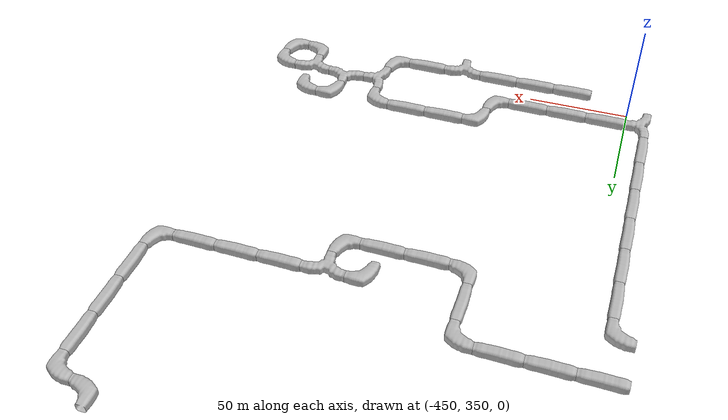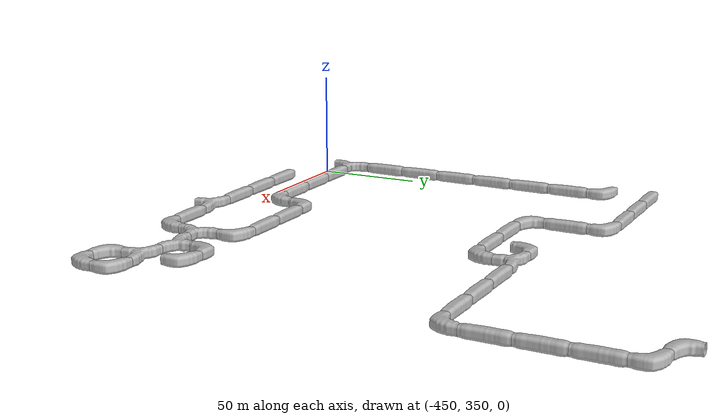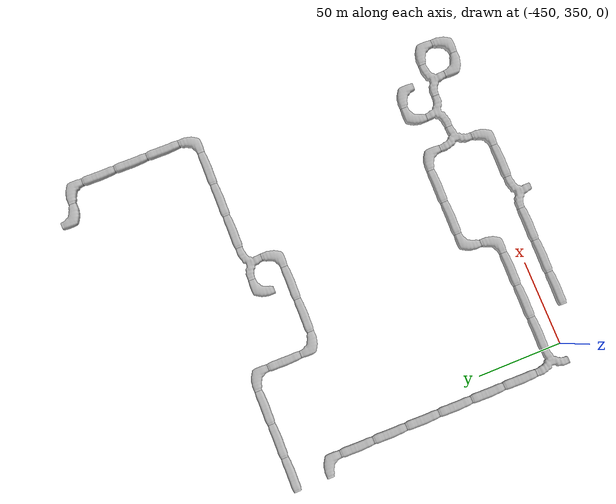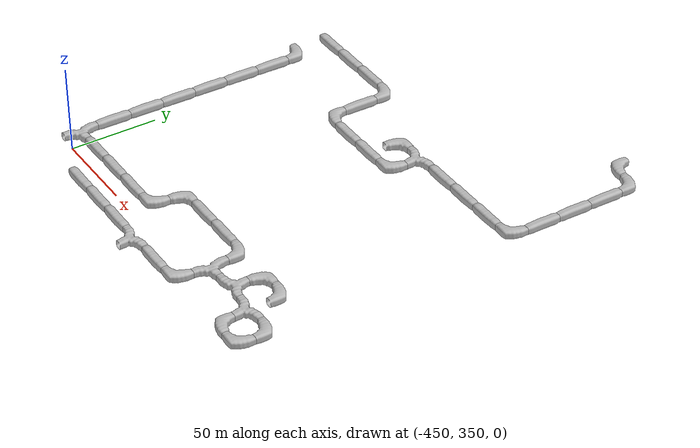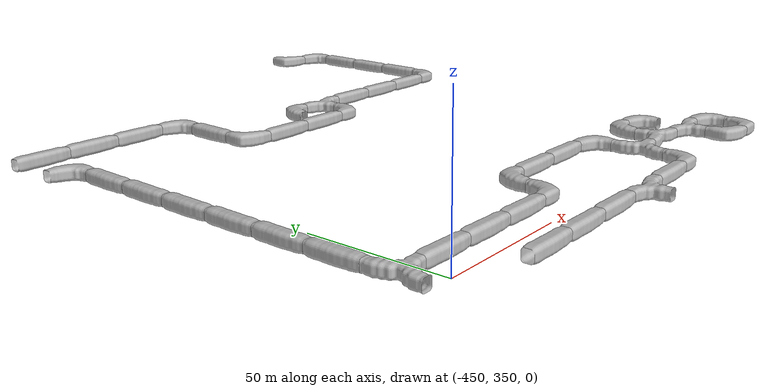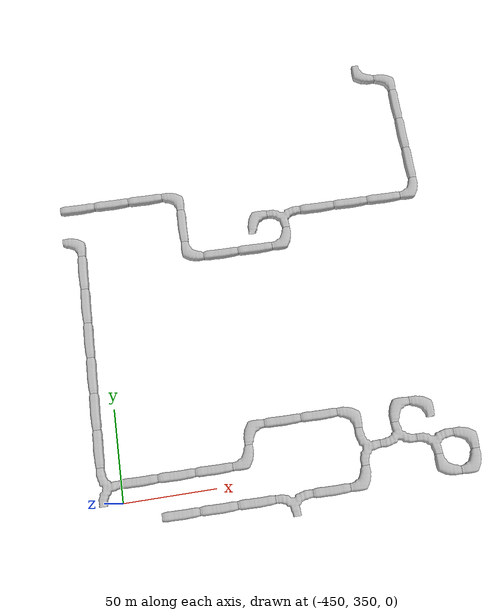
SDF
<sdf version="1.6">
 <world name="cave_16000">
  <include>
   <static>true</static>
   <name>cave_-23_18</name>
   <pose>-460 360 0 0 0 -1.5707963267948966</pose>
   <uri>model://cave_3way_20m</uri>
  </include>
  <include>
   <static>true</static>
   <name>cave_-22_18</name>
   <pose>-440 360 0 0 0 1.5707963267948966</pose>
   <uri>model://cave_straight_20m</uri>
  </include>
  <include>
   <static>true</static>
   <name>cave_-21_18</name>
   <pose>-420 360 0 0 0 1.5707963267948966</pose>
   <uri>model://cave_straight_20m</uri>
  </include>
  <include>
   <static>true</static>
   <name>cave_-20_18</name>
   <pose>-400 360 0 0 0 1.5707963267948966</pose>
   <uri>model://cave_straight_20m</uri>
  </include>
  <include>
   <static>true</static>
   <name>cave_-19_18</name>
   <pose>-380 360 0 0 0 1.5707963267948966</pose>
   <uri>model://cave_L_20m</uri>
  </include>
  <include>
   <static>true</static>
   <name>cave_-19_19</name>
   <pose>-380 380 0 0 0 -1.5707963267948966</pose>
   <uri>model://cave_L_20m</uri>
  </include>
  <include>
   <static>true</static>
   <name>cave_-18_19</name>
   <pose>-360 380 0 0 0 1.5707963267948966</pose>
   <uri>model://cave_straight_20m</uri>
  </include>
  <include>
   <static>true</static>
   <name>cave_-17_19</name>
   <pose>-340 380 0 0 0 1.5707963267948966</pose>
   <uri>model://cave_straight_20m</uri>
  </include>
  <include>
   <static>true</static>
   <name>cave_-16_19</name>
   <pose>-320 380 0 0 0 3.141592653589793</pose>
   <uri>model://cave_L_20m</uri>
  </include>
  <include>
   <static>true</static>
   <name>cave_-16_18</name>
   <pose>-320 360 0 0 0 -1.5707963267948966</pose>
   <uri>model://cave_3way_20m</uri>
  </include>
  <include>
   <static>true</static>
   <name>cave_-15_18</name>
   <pose>-300 360 0 0 0 0.0</pose>
   <uri>model://cave_3way_20m</uri>
  </include>
  <include>
   <static>true</static>
   <name>cave_-14_18</name>
   <pose>-280 360 0 0 0 3.141592653589793</pose>
   <uri>model://cave_3way_20m</uri>
  </include>
  <include>
   <static>true</static>
   <name>cave_-13_18</name>
   <pose>-260 360 0 0 0 3.141592653589793</pose>
   <uri>model://cave_L_20m</uri>
  </include>
  <include>
   <static>true</static>
   <name>cave_-13_17</name>
   <pose>-260 340 0 0 0 1.5707963267948966</pose>
   <uri>model://cave_L_20m</uri>
  </include>
  <include>
   <static>true</static>
   <name>cave_-14_17</name>
   <pose>-280 340 0 0 0 0.0</pose>
   <uri>model://cave_L_20m</uri>
  </include>
  <include>
   <static>true</static>
   <name>cave_-15_19</name>
   <pose>-300 380 0 0 0 -1.5707963267948966</pose>
   <uri>model://cave_L_20m</uri>
  </include>
  <include>
   <static>true</static>
   <name>cave_-14_19</name>
   <pose>-280 380 0 0 0 3.141592653589793</pose>
   <uri>model://cave_L_20m</uri>
  </include>
  <include>
   <static>true</static>
   <name>cave_-16_17</name>
   <pose>-320 340 0 0 0 1.5707963267948966</pose>
   <uri>model://cave_L_20m</uri>
  </include>
  <include>
   <static>true</static>
   <name>cave_-17_17</name>
   <pose>-340 340 0 0 0 1.5707963267948966</pose>
   <uri>model://cave_straight_20m</uri>
  </include>
  <include>
   <static>true</static>
   <name>cave_-18_17</name>
   <pose>-360 340 0 0 0 3.141592653589793</pose>
   <uri>model://cave_3way_20m</uri>
  </include>
  <include>
   <static>true</static>
   <name>cave_-19_17</name>
   <pose>-380 340 0 0 0 1.5707963267948966</pose>
   <uri>model://cave_straight_20m</uri>
  </include>
  <include>
   <static>true</static>
   <name>cave_-20_17</name>
   <pose>-400 340 0 0 0 1.5707963267948966</pose>
   <uri>model://cave_straight_20m</uri>
  </include>
  <include>
   <static>true</static>
   <name>cave_-21_17</name>
   <pose>-420 340 0 0 0 1.5707963267948966</pose>
   <uri>model://cave_straight_20m</uri>
  </include>
  <include>
   <static>true</static>
   <name>cave_-23_19</name>
   <pose>-460 380 0 0 0 0.0</pose>
   <uri>model://cave_straight_20m</uri>
  </include>
  <include>
   <static>true</static>
   <name>cave_-23_20</name>
   <pose>-460 400 0 0 0 0.0</pose>
   <uri>model://cave_straight_20m</uri>
  </include>
  <include>
   <static>true</static>
   <name>cave_-23_21</name>
   <pose>-460 420 0 0 0 0.0</pose>
   <uri>model://cave_straight_20m</uri>
  </include>
  <include>
   <static>true</static>
   <name>cave_-23_22</name>
   <pose>-460 440 0 0 0 0.0</pose>
   <uri>model://cave_straight_20m</uri>
  </include>
  <include>
   <static>true</static>
   <name>cave_-23_23</name>
   <pose>-460 460 0 0 0 0.0</pose>
   <uri>model://cave_straight_20m</uri>
  </include>
  <include>
   <static>true</static>
   <name>cave_-23_24</name>
   <pose>-460 480 0 0 0 0.0</pose>
   <uri>model://cave_straight_20m</uri>
  </include>
  <include>
   <static>true</static>
   <name>cave_-23_25</name>
   <pose>-460 500 0 0 0 3.141592653589793</pose>
   <uri>model://cave_L_20m</uri>
  </include>
  <include>
   <static>true</static>
   <name>cave_-23_26</name>
   <pose>-460 520 0 0 0 1.5707963267948966</pose>
   <uri>model://cave_straight_20m</uri>
  </include>
  <include>
   <static>true</static>
   <name>cave_-22_26</name>
   <pose>-440 520 0 0 0 1.5707963267948966</pose>
   <uri>model://cave_straight_20m</uri>
  </include>
  <include>
   <static>true</static>
   <name>cave_-21_26</name>
   <pose>-420 520 0 0 0 1.5707963267948966</pose>
   <uri>model://cave_straight_20m</uri>
  </include>
  <include>
   <static>true</static>
   <name>cave_-20_26</name>
   <pose>-400 520 0 0 0 3.141592653589793</pose>
   <uri>model://cave_L_20m</uri>
  </include>
  <include>
   <static>true</static>
   <name>cave_-20_25</name>
   <pose>-400 500 0 0 0 0.0</pose>
   <uri>model://cave_straight_20m</uri>
  </include>
  <include>
   <static>true</static>
   <name>cave_-20_24</name>
   <pose>-400 480 0 0 0 0.0</pose>
   <uri>model://cave_L_20m</uri>
  </include>
  <include>
   <static>true</static>
   <name>cave_-19_24</name>
   <pose>-380 480 0 0 0 1.5707963267948966</pose>
   <uri>model://cave_straight_20m</uri>
  </include>
  <include>
   <static>true</static>
   <name>cave_-18_24</name>
   <pose>-360 480 0 0 0 1.5707963267948966</pose>
   <uri>model://cave_straight_20m</uri>
  </include>
  <include>
   <static>true</static>
   <name>cave_-17_24</name>
   <pose>-340 480 0 0 0 1.5707963267948966</pose>
   <uri>model://cave_L_20m</uri>
  </include>
  <include>
   <static>true</static>
   <name>cave_-17_25</name>
   <pose>-340 500 0 0 0 3.141592653589793</pose>
   <uri>model://cave_3way_20m</uri>
  </include>
  <include>
   <static>true</static>
   <name>cave_-16_25</name>
   <pose>-320 500 0 0 0 1.5707963267948966</pose>
   <uri>model://cave_straight_20m</uri>
  </include>
  <include>
   <static>true</static>
   <name>cave_-15_25</name>
   <pose>-300 500 0 0 0 1.5707963267948966</pose>
   <uri>model://cave_straight_20m</uri>
  </include>
  <include>
   <static>true</static>
   <name>cave_-14_25</name>
   <pose>-280 500 0 0 0 1.5707963267948966</pose>
   <uri>model://cave_straight_20m</uri>
  </include>
  <include>
   <static>true</static>
   <name>cave_-13_25</name>
   <pose>-260 500 0 0 0 1.5707963267948966</pose>
   <uri>model://cave_L_20m</uri>
  </include>
  <include>
   <static>true</static>
   <name>cave_-13_26</name>
   <pose>-260 520 0 0 0 0.0</pose>
   <uri>model://cave_straight_20m</uri>
  </include>
  <include>
   <static>true</static>
   <name>cave_-13_27</name>
   <pose>-260 540 0 0 0 0.0</pose>
   <uri>model://cave_straight_20m</uri>
  </include>
  <include>
   <static>true</static>
   <name>cave_-13_28</name>
   <pose>-260 560 0 0 0 0.0</pose>
   <uri>model://cave_straight_20m</uri>
  </include>
  <include>
   <static>true</static>
   <name>cave_-13_29</name>
   <pose>-260 580 0 0 0 3.141592653589793</pose>
   <uri>model://cave_L_20m</uri>
  </include>
  <include>
   <static>true</static>
   <name>cave_-14_29</name>
   <pose>-280 580 0 0 0 0.0</pose>
   <uri>model://cave_L_20m</uri>
  </include>
  <include>
   <static>true</static>
   <name>cave_-18_25</name>
   <pose>-360 500 0 0 0 -1.5707963267948966</pose>
   <uri>model://cave_L_20m</uri>
  </include>
 </world>
</sdf>
